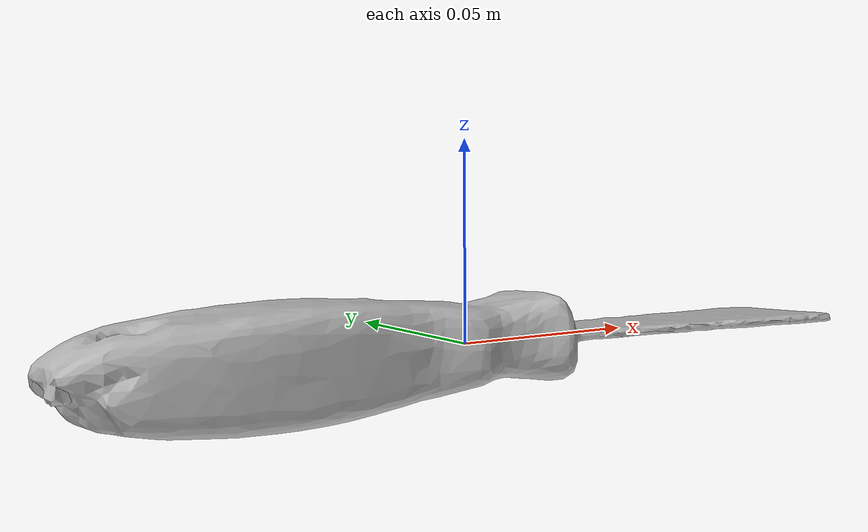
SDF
<?xml version='1.0'?>
<sdf version='1.6'>
	<model name='a_scraper'>
		<static>false</static>
		<pose>0 0 0 0 0 0</pose>

		<link name='link'>
			<inertial>
			<mass>0.1</mass>
			<pose>-0.0078947 5.2477e-05 -9.0654e-05 0 0 0</pose>
				<inertia>
					<ixx>4.3449e-07</ixx>
					<ixy>0</ixy>
					<ixz>0</ixz>
					<iyy>6.6601e-06</iyy>
					<iyz>0</iyz>
					<izz>6.2495e-06</izz>
				</inertia>
			</inertial>
			<sensor name="tool_contact_sensor" type="contact">
				<always_on>true</always_on>
				<update_rate>30.0</update_rate>
				<contact>
					<collision>collision</collision>
				</contact>
				<plugin name="tool_bumper" filename="libgazebo_ros_bumper.so">
					<bumperTopicName>tool_contact_sensor_state</bumperTopicName>
					<frameName>world</frameName>
				</plugin>
			</sensor>
			<collision name='collision'>
				<geometry>
					<mesh>
						<uri>model://a_scraper/a_scraper.dae</uri>
					</mesh>
				</geometry>
				<surface>
					<friction>
						<ode>
							<mu>0.2</mu>
							<mu2>0.2</mu2>
						</ode>
					</friction>
				</surface>
			</collision>
			<visual name='visual'>
				<geometry>
					<mesh>
						<uri>model://a_scraper/a_scraper.dae</uri>
					</mesh>
				</geometry>
			</visual>
		</link>
	</model>
</sdf>
